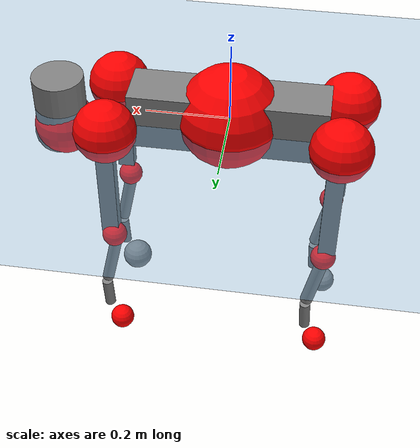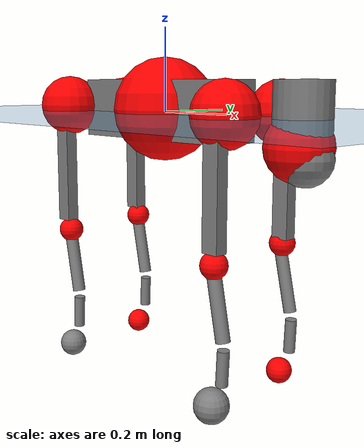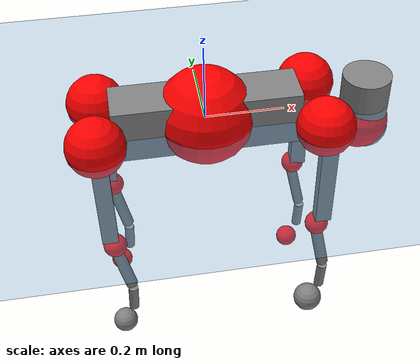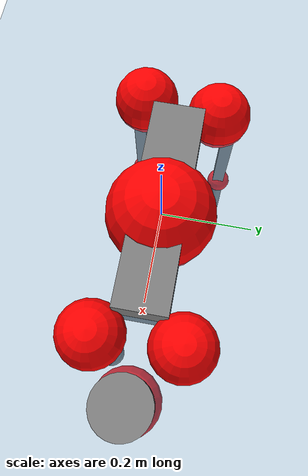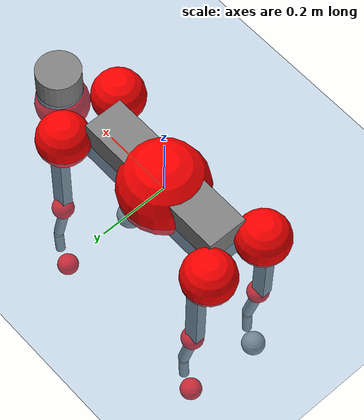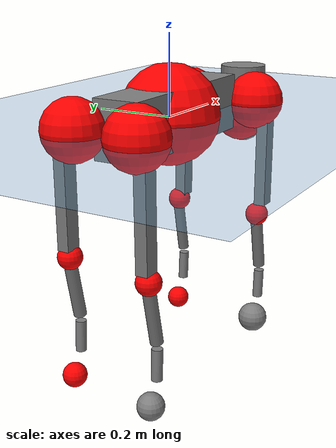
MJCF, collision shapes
<mujoco model="go2">
  <compiler angle="radian" assetdir="assets" balanceinertia="true" inertiafromgeom="false"/>

  <option timestep="0.005" density="1.2" viscosity="2e-05"/>

  <size nkey="1"/>

  <visual>
    <quality shadowsize="8192"/>
    <map shadowclip="0.5"/>
  </visual>

  <default>
    <default class="/">
      <geom contype="0" conaffinity="0" group="1" solref="-1000 -80"/>
      <site size="0.01 0.005 0.005" group="5"/>
      <general forcelimited="true" biastype="affine" gainprm="20" biasprm="0 -20 -0.5"/>
      <default class="go2">
        <joint armature="0.01" damping="0.01" frictionloss="0.2"/>
        <geom condim="1" margin="0.001"/>
        <default class="visual">
          <geom type="mesh" group="2"/>
        </default>
        <default class="collision">
          <geom group="3"/>
          <default class="foot">
            <geom size="0.022 0 0" condim="6" priority="1" friction="0.8 0.02 0.01" solimp="0.015 1 0.022"/>
          </default>
        </default>
        <default class="reward_collision_sphere">
          <geom group="5" rgba="1 0 0 1"/>
        </default>
      </default>
    </default>
  </default>

  <asset>
    <texture type="skybox" colorspace="auto" name="//unnamed_texture_0" builtin="gradient" rgb1="0.95 0.95 0.95" rgb2="0.95 0.95 0.95" width="100" height="600"/>
    <texture type="2d" colorspace="auto" name="texplane" builtin="checker" rgb1="0.345 0.575 0.748" rgb2="0.345 0.575 0.748" markrgb="1 1 1" width="512" height="512"/>
    <material name="MatPlane" class="/" texture="texplane" texuniform="true" texrepeat="2 2" specular="0.9"/>
    <material name="metal" class="/" rgba="0.9 0.95 0.95 1"/>
    <material name="black" class="/" rgba="0 0 0 1"/>
    <material name="white" class="/"/>
    <material name="gray" class="/" rgba="0.671705 0.692426 0.77427 1"/>
    <mesh name="base_0" class="/" file="base_0.obj"/>
    <mesh name="base_1" class="/" file="base_1.obj"/>
    <mesh name="base_2" class="/" file="base_2.obj"/>
    <mesh name="base_3" class="/" file="base_3.obj"/>
    <mesh name="base_4" class="/" file="base_4.obj"/>
    <mesh name="hip_0" class="/" file="hip_0.obj"/>
    <mesh name="hip_1" class="/" file="hip_1.obj"/>
    <mesh name="thigh_0" class="/" file="thigh_0.obj"/>
    <mesh name="thigh_1" class="/" file="thigh_1.obj"/>
    <mesh name="thigh_mirror_0" class="/" file="thigh_mirror_0.obj"/>
    <mesh name="thigh_mirror_1" class="/" file="thigh_mirror_1.obj"/>
    <mesh name="calf_0" class="/" file="calf_0.obj"/>
    <mesh name="calf_1" class="/" file="calf_1.obj"/>
    <mesh name="calf_mirror_0" class="/" file="calf_mirror_0.obj"/>
    <mesh name="calf_mirror_1" class="/" file="calf_mirror_1.obj"/>
    <mesh name="foot" class="/" file="foot.obj"/>
  </asset>

  <worldbody>
    <geom name="floor" class="/" size="100 100 0.125" type="plane" group="0" material="MatPlane"/>
    <light name="toplight_shadow" class="/" pos="0 0 5" dir="0.0990148 0.0990148 -0.990148" type="directional" ambient="0.04 0.04 0.04" diffuse="0.55 0.55 0.55" specular="0.12 0.12 0.12"/>
    <light name="toplight_fill" class="/" pos="0 0 5" dir="0.0990148 0.0990148 -0.990148" type="directional" castshadow="false" ambient="0.04 0.04 0.04" diffuse="0.3 0.3 0.3" specular="0.08 0.08 0.08"/>
    <body name="trunk" childclass="go2" pos="0.000799335 -0.000754185 0.00707921" quat="1 -5.73539e-05 -9.43137e-05 0.000213437">
      <inertial pos="0.0384826 0.00985868 -0.011838" quat="-0.00754914 0.721567 0.00202742 0.6923" mass="13.3615" diaginertia="0.541487 0.0293463 0.154166"/>
      <joint name="//unnamed_joint_0" type="free" armature="0" damping="0" frictionloss="0"/>
      <geom name="//unnamed_geom_1" class="visual" material="black" mesh="base_0"/>
      <geom name="//unnamed_geom_2" class="visual" material="black" mesh="base_1"/>
      <geom name="//unnamed_geom_3" class="visual" material="black" mesh="base_2"/>
      <geom name="//unnamed_geom_4" class="visual" material="white" mesh="base_3"/>
      <geom name="//unnamed_geom_5" class="visual" material="gray" mesh="base_4"/>
      <geom name="trunk_1" class="collision" size="0.233677 0.0580777 0.0708113" type="box"/>
      <geom name="trunk_2" class="collision" size="0.0621152 0.0559037" pos="0.409064 0 0.0148612" type="cylinder"/>
      <geom name="trunk_3" class="collision" size="0.0583883" pos="0.420547 0 -0.089167"/>
      <geom name="//unnamed_geom_9" class="reward_collision_sphere" size="0.12423"/>
      <geom name="//unnamed_geom_10" class="reward_collision_sphere" size="0.0745382" pos="0.401888 0 -0.0668753"/>
      <site name="imu" pos="0.0227596 -0.000354657 0.014288" size="0.012423"/>
      <camera name="track" pos="0 -1.61096 0" quat="0.707107 0.707107 0 0" mode="trackcom"/>
      <camera name="ego_camera" pos="0.447818 0 0.0668753" quat="-0.5 -0.5 0.5 0.5"/>
      <body name="FL_hip" pos="0.277592 0.0405826 -0.00233469" quat="0.999997 0.00221999 -0.000439077 0.00103323">
        <inertial pos="-0.0176989 0.00633849 -0.00167672" quat="0.509343 0.506284 0.480472 0.503381" mass="1.43986" diaginertia="0.00599138 0.000194427 0.00330659"/>
        <joint name="FL_hip_joint" pos="0 0 0" axis="0.999254 -0.0194513 -0.0333642" stiffness="0.00905083" range="-1.07387 0.939699" armature="0.00562801" damping="0.060912" frictionloss="0.25536"/>
        <geom name="//unnamed_geom_11" class="visual" material="metal" mesh="hip_0"/>
        <geom name="//unnamed_geom_12" class="visual" material="gray" mesh="hip_1"/>
        <geom name="//unnamed_geom_13" class="collision" size="0.057146 0.0248461" pos="0 0.0644385 0" quat="0.707107 0.707107 0 0" type="cylinder"/>
        <geom name="//unnamed_geom_14" class="reward_collision_sphere" size="0.0745382" pos="0 0.0563836 0"/>
        <body name="FL_thigh" pos="-0.00100854 0.0751791 -0.000186056" quat="1 -0.000484133 0.000339333 0.000611555">
          <inertial pos="-0.0090697 -0.01761 -0.0588454" quat="0.827404 0.0933414 -0.0169529 0.553537" mass="2.07075" diaginertia="0.0414873 0.00201271 0.00649926"/>
          <joint name="FL_thigh_joint" pos="0 0 0" axis="0.000199654 0.998347 0.0574662" range="-1.53979 3.4805" armature="0.0122344" damping="0.0195582" frictionloss="0.369217"/>
          <geom name="//unnamed_geom_15" class="visual" material="metal" mesh="thigh_0"/>
          <geom name="//unnamed_geom_16" class="visual" material="gray" mesh="thigh_1"/>
          <geom name="//unnamed_geom_17" class="collision" size="0.132305 0.0152182 0.0211192" pos="0 0 -0.158272" quat="0.707107 0 0.707107 0" type="box"/>
          <body name="FL_calf" pos="-0.00864043 0.00889622 -0.30466" quat="0.999991 0.00265575 -0.00212229 -0.00267082">
            <inertial pos="0.0103666 0.000630656 -0.20863" quat="0.712884 -0.00117988 0.00260597 0.701276" mass="0.484227" diaginertia="0.00961199 0.000498966 0.000415991"/>
            <joint name="FL_calf_joint" pos="0 0 0" axis="0.0560402 0.996644 -0.0596595" range="-2.58965 -0.905112" armature="0.00965637" damping="0.0523326" frictionloss="0.17035"/>
            <geom name="//unnamed_geom_18" class="visual" material="gray" mesh="calf_0"/>
            <geom name="//unnamed_geom_19" class="visual" material="black" mesh="calf_1"/>
            <geom name="FL_calf0" class="collision" size="0.0149076 0.0745382" pos="0.0114825 0 -0.089167" quat="0.994493 0 -0.104807 0" type="cylinder"/>
            <geom name="//unnamed_geom_21" class="collision" size="0.0136653 0.0403749" pos="0.0287063 0 -0.219945" quat="0.999688 0 0.0249974 0" type="cylinder"/>
            <geom name="//unnamed_geom_22" class="visual" pos="0 0 -0.316543" quat="1 0 0 0" material="black" mesh="foot"/>
            <geom name="FL_foot" class="foot" size="0.0258528" pos="-0.00287063 0 -0.316543"/>
            <geom name="//unnamed_geom_24" class="reward_collision_sphere" size="0.0310576"/>
            <geom name="//unnamed_geom_25" class="reward_collision_sphere" size="0.0310576" pos="-0.00287063 0 -0.316543"/>
            <site name="FL_foot" class="foot" pos="-0.00287063 0 -0.316543" size="0.012423"/>
          </body>
        </body>
      </body>
      <body name="FR_hip" pos="0.284028 -0.038669 -0.0012714" quat="1 -2.3788e-05 5.23078e-05 -3.43541e-05">
        <inertial pos="-0.0173272 -0.00190823 0.000731738" quat="0.497566 0.505191 0.50533 0.491784" mass="1.22254" diaginertia="0.00522012 0.000173591 0.00321914"/>
        <joint name="FR_hip_joint" pos="0 0 0" axis="0.999859 -0.0166996 0.00180498" stiffness="0.0139802" range="-0.844279 1.04283" armature="0.0180317" damping="0" frictionloss="0.37083"/>
        <geom name="//unnamed_geom_26" class="visual" pos="0 -5.92943e-09 -2.54325e-07" quat="4.63268e-05 1 0 0" material="metal" mesh="hip_0"/>
        <geom name="//unnamed_geom_27" class="visual" pos="0 -9.61231e-09 6.29044e-07" quat="4.63268e-05 1 0 0" material="gray" mesh="hip_1"/>
        <geom name="//unnamed_geom_28" class="collision" size="0.057146 0.0248461" pos="0 -0.0644385 0" quat="0.707107 0.707107 0 0" type="cylinder"/>
        <geom name="//unnamed_geom_29" class="reward_collision_sphere" size="0.0745382" pos="0 -0.0563836 0"/>
        <body name="FR_thigh" pos="0.0039773 -0.0876964 0.00475535" quat="1 -0.000399898 0.000221495 0.000482998">
          <inertial pos="-0.00587502 0.0178462 -0.0494948" quat="0.53235 0.018082 0.0710357 0.843345" mass="2.75753" diaginertia="0.0402335 0.00200631 0.00662617"/>
          <joint name="FR_thigh_joint" pos="0 0 0" axis="0.0132136 -0.999182 0.038207" stiffness="0.0227553" range="-3.72468 1.43726" armature="0.0119526" damping="0.0479347" frictionloss="0.0881404"/>
          <geom name="//unnamed_geom_30" class="visual" material="metal" mesh="thigh_mirror_0"/>
          <geom name="//unnamed_geom_31" class="visual" material="gray" mesh="thigh_mirror_1"/>
          <geom name="//unnamed_geom_32" class="collision" size="0.132305 0.0152182 0.0211192" pos="0 0 -0.158272" quat="0.707107 0 0.707107 0" type="box"/>
          <body name="FR_calf" pos="-0.00971446 0.0106172 -0.320224" quat="1 -3.11548e-05 -0.000399384 -0.000198956">
            <inertial pos="0.00766227 -0.000729653 -0.220719" quat="0.717631 0.00814083 0.0167896 0.696173" mass="0.461078" diaginertia="0.0103384 0.000546034 0.000389265"/>
            <joint name="FR_calf_joint" pos="0 0 0" axis="0.0174215 -0.999848 0.000410558" range="0.954026 2.59612" armature="0.0139305" damping="0.00884474" frictionloss="0.38845"/>
            <geom name="//unnamed_geom_33" class="visual" material="gray" mesh="calf_mirror_0"/>
            <geom name="//unnamed_geom_34" class="visual" material="black" mesh="calf_mirror_1"/>
            <geom name="FR_calf0" class="collision" size="0.01615 0.0745382" pos="0.0143531 0 -0.089167" quat="0.995004 0 -0.0998334 0" type="cylinder"/>
            <geom name="//unnamed_geom_36" class="collision" size="0.0136653 0.0403749" pos="0.0287063 0 -0.219945" quat="0.999688 0 0.0249974 0" type="cylinder"/>
            <geom name="//unnamed_geom_37" class="visual" pos="0 0 -0.316543" quat="1 0 0 0" material="black" mesh="foot"/>
            <geom name="FR_foot" class="foot" size="0.0405839" pos="-0.00287063 0 -0.316543"/>
            <geom name="//unnamed_geom_39" class="reward_collision_sphere" size="0.0310576"/>
            <geom name="//unnamed_geom_40" class="reward_collision_sphere" size="0.0310576" pos="-0.00287063 0 -0.316543"/>
            <site name="FR_foot" class="foot" pos="-0.00287063 0 -0.316543" size="0.012423"/>
          </body>
        </body>
      </body>
      <body name="RL_hip" pos="-0.265985 0.0335604 0.00147783" quat="1 0.000347724 -0.000708451 -0.000561542">
        <inertial pos="0.00354518 -0.00868021 0.00140627" quat="0.524008 0.495726 0.474122 0.504857" mass="1.30823" diaginertia="0.00621697 0.000193172 0.00435006"/>
        <joint name="RL_hip_joint" pos="0 0 0" axis="-0.999908 -0.000972617 0.013554" stiffness="0.0161779" range="-1.1108 1.30506" armature="0.0191375" damping="0.0360878" frictionloss="0.230949"/>
        <geom name="//unnamed_geom_41" class="visual" pos="4.42583e-10 0 8.67565e-08" quat="4.63268e-05 0 1 0" material="metal" mesh="hip_0"/>
        <geom name="//unnamed_geom_42" class="visual" pos="7.1748e-10 0 7.69407e-08" quat="4.63268e-05 0 1 0" material="gray" mesh="hip_1"/>
        <geom name="//unnamed_geom_43" class="collision" size="0.057146 0.0248461" pos="0 0.0644385 0" quat="0.707107 0.707107 0 0" type="cylinder"/>
        <geom name="//unnamed_geom_44" class="reward_collision_sphere" size="0.0745382" pos="0 0.0563836 0"/>
        <body name="RL_thigh" pos="0.00639095 0.0895595 0.00163451" quat="1 -1.0165e-05 -1.83107e-06 2.64527e-05">
          <inertial pos="-0.00444528 -0.02658 -0.0484189" quat="0.831222 0.0844769 -0.0235526 0.54898" mass="2.19558" diaginertia="0.0359799 0.00211415 0.00615001"/>
          <joint name="RL_thigh_joint" pos="0 0 0" axis="-0.044351 0.998985 -0.00792185" range="-0.492079 4.52383" armature="0.0154339" damping="0.0304705" frictionloss="0.212139"/>
          <geom name="//unnamed_geom_45" class="visual" material="metal" mesh="thigh_0"/>
          <geom name="//unnamed_geom_46" class="visual" material="gray" mesh="thigh_1"/>
          <geom name="//unnamed_geom_47" class="collision" size="0.132305 0.0152182 0.0211192" pos="0 0 -0.158272" quat="0.707107 0 0.707107 0" type="box"/>
          <body name="RL_calf" pos="0.00650016 0.002042 -0.313291" quat="0.999998 0.00025491 -0.000435708 0.00169496">
            <inertial pos="0.00926714 0.000271757 -0.211991" quat="0.704359 -0.0568808 -0.0290198 0.706966" mass="0.471928" diaginertia="0.00936668 0.000507001 0.000450702"/>
            <joint name="RL_calf_joint" pos="0 0 0" axis="0.00270246 0.999242 -0.0388423" range="-2.74798 -0.842319" armature="0.0170099" damping="0.00571424" frictionloss="0.166892"/>
            <geom name="//unnamed_geom_48" class="visual" material="gray" mesh="calf_0"/>
            <geom name="//unnamed_geom_49" class="visual" material="black" mesh="calf_1"/>
            <geom name="RL_calf0" class="collision" size="0.01615 0.0745382" pos="0.0143531 0 -0.089167" quat="0.995004 0 -0.0998334 0" type="cylinder"/>
            <geom name="//unnamed_geom_51" class="collision" size="0.0136653 0.0403749" pos="0.0287063 0 -0.219945" quat="0.999688 0 0.0249974 0" type="cylinder"/>
            <geom name="//unnamed_geom_52" class="visual" pos="0 0 -0.316543" quat="1 0 0 0" material="black" mesh="foot"/>
            <geom name="RL_foot" class="foot" size="0.0146404" pos="-0.00287063 0 -0.316543"/>
            <geom name="//unnamed_geom_54" class="reward_collision_sphere" size="0.0310576"/>
            <geom name="//unnamed_geom_55" class="reward_collision_sphere" size="0.0310576" pos="-0.00287063 0 -0.316543"/>
            <site name="RL_foot" class="foot" pos="-0.00287063 0 -0.316543" size="0.012423"/>
          </body>
        </body>
      </body>
      <body name="RR_hip" pos="-0.275866 -0.0271577 0.00433752" quat="0.999992 -0.00247903 -0.00237873 0.0021494">
        <inertial pos="0.0182433 -0.00320993 -0.00951672" quat="0.492142 0.501017 0.496907 0.509766" mass="1.37656" diaginertia="0.00580701 0.000214133 0.00420747"/>
        <joint name="RR_hip_joint" pos="0 0 0" axis="-0.999983 0.00246884 0.0053247" stiffness="0.0235826" range="-0.866788 0.814424" armature="0.0123293" damping="0.041839" frictionloss="0.263134"/>
        <geom name="//unnamed_geom_56" class="visual" pos="-4.64389e-10 -5.92943e-09 3.41082e-07" quat="2.14617e-09 4.63268e-05 4.63268e-05 -1" material="metal" mesh="hip_0"/>
        <geom name="//unnamed_geom_57" class="visual" pos="-6.63548e-10 -9.61231e-09 -5.52103e-07" quat="2.14617e-09 4.63268e-05 4.63268e-05 -1" material="gray" mesh="hip_1"/>
        <geom name="//unnamed_geom_58" class="collision" size="0.057146 0.0248461" pos="0 -0.0644385 0" quat="0.707107 0.707107 0 0" type="cylinder"/>
        <geom name="//unnamed_geom_59" class="reward_collision_sphere" size="0.0745382" pos="0 -0.0563836 0"/>
        <body name="RR_thigh" pos="0.00166676 -0.0723417 -0.0104601" quat="1 0.000295826 0.000201226 0.000107806">
          <inertial pos="-0.012647 0.0191034 -0.0491356" quat="0.551274 -0.0200014 0.0849115 0.829751" mass="2.91735" diaginertia="0.0467219 0.00233167 0.00726227"/>
          <joint name="RR_thigh_joint" pos="0 0 0" axis="-0.0146777 -0.999061 0.0407586" range="-4.51633 0.548186" armature="0.0146261" damping="0.018967" frictionloss="0.26565"/>
          <geom name="//unnamed_geom_60" class="visual" material="metal" mesh="thigh_mirror_0"/>
          <geom name="//unnamed_geom_61" class="visual" material="gray" mesh="thigh_mirror_1"/>
          <geom name="//unnamed_geom_62" class="collision" size="0.132305 0.0152182 0.0211192" pos="0 0 -0.158272" quat="0.707107 0 0.707107 0" type="box"/>
          <body name="RR_calf" pos="0.0101484 0.00107243 -0.316753" quat="0.999997 -0.00173299 -0.00141362 -0.000586999">
            <inertial pos="0.0124578 0.0006599 -0.209094" quat="0.733202 0.00717463 -0.00765545 0.67993" mass="0.47055" diaginertia="0.00981211 0.000446861 0.000396913"/>
            <joint name="RR_calf_joint" pos="0 0 0" axis="-0.0206585 -0.999767 -0.00627092" range="0.854772 2.77122" armature="0.0195213" damping="0.00171102" frictionloss="0.245537"/>
            <geom name="//unnamed_geom_63" class="visual" material="gray" mesh="calf_mirror_0"/>
            <geom name="//unnamed_geom_64" class="visual" material="black" mesh="calf_mirror_1"/>
            <geom name="RR_calf0" class="collision" size="0.01615 0.0745382" pos="0.0143531 0 -0.089167" quat="0.995004 0 -0.0998334 0" type="cylinder"/>
            <geom name="//unnamed_geom_66" class="collision" size="0.0136653 0.0403749" pos="0.0287063 0 -0.219945" quat="0.999688 0 0.0249974 0" type="cylinder"/>
            <geom name="//unnamed_geom_67" class="visual" pos="0 0 -0.316543" quat="1 0 0 0" material="black" mesh="foot"/>
            <geom name="RR_foot" class="foot" size="0.0340781" pos="-0.00287063 0 -0.316543"/>
            <geom name="//unnamed_geom_69" class="reward_collision_sphere" size="0.0310576"/>
            <geom name="//unnamed_geom_70" class="reward_collision_sphere" size="0.0310576" pos="-0.00287063 0 -0.316543"/>
            <site name="RR_foot" class="foot" pos="-0.00287063 0 -0.316543" size="0.012423"/>
          </body>
        </body>
      </body>
    </body>
  </worldbody>

  <contact>
    <pair class="/" geom1="floor" geom2="FL_foot" name="//unnamed_contact_0"/>
    <pair class="/" geom1="floor" geom2="FR_foot" name="//unnamed_contact_1"/>
    <pair class="/" geom1="floor" geom2="RL_foot" name="//unnamed_contact_2"/>
    <pair class="/" geom1="floor" geom2="RR_foot" name="//unnamed_contact_3"/>
  </contact>

  <actuator>
    <general name="FL_hip" class="/" joint="FL_hip_joint" forcerange="-29.7722 29.7722" gainprm="24.2831" biasprm="0 -24.2831 -0.640267"/>
    <general name="FL_thigh" class="/" joint="FL_thigh_joint" forcerange="-35.5862 35.5862" gainprm="24.2831" biasprm="0 -24.2831 -0.640267"/>
    <general name="FL_calf" class="/" joint="FL_calf_joint" forcerange="-59.7731 59.7731" gainprm="24.2831" biasprm="0 -24.2831 -0.640267"/>
    <general name="FR_hip" class="/" joint="FR_hip_joint" forcerange="-36.2184 36.2184" gainprm="24.2831" biasprm="0 -24.2831 -0.640267"/>
    <general name="FR_thigh" class="/" joint="FR_thigh_joint" forcerange="-24.7437 24.7437" gainprm="24.2831" biasprm="0 -24.2831 -0.640267"/>
    <general name="FR_calf" class="/" joint="FR_calf_joint" forcerange="-76.5451 76.5451" gainprm="24.2831" biasprm="0 -24.2831 -0.640267"/>
    <general name="RL_hip" class="/" joint="RL_hip_joint" forcerange="-29.4798 29.4798" gainprm="24.2831" biasprm="0 -24.2831 -0.640267"/>
    <general name="RL_thigh" class="/" joint="RL_thigh_joint" forcerange="-40.1942 40.1942" gainprm="24.2831" biasprm="0 -24.2831 -0.640267"/>
    <general name="RL_calf" class="/" joint="RL_calf_joint" forcerange="-59.3023 59.3023" gainprm="24.2831" biasprm="0 -24.2831 -0.640267"/>
    <general name="RR_hip" class="/" joint="RR_hip_joint" forcerange="-32.3492 32.3492" gainprm="24.2831" biasprm="0 -24.2831 -0.640267"/>
    <general name="RR_thigh" class="/" joint="RR_thigh_joint" forcerange="-41.7355 41.7355" gainprm="24.2831" biasprm="0 -24.2831 -0.640267"/>
    <general name="RR_calf" class="/" joint="RR_calf_joint" forcerange="-37.605 37.605" gainprm="24.2831" biasprm="0 -24.2831 -0.640267"/>
  </actuator>

  <sensor>
    <gyro site="imu" name="imu_angular_velocity"/>
    <velocimeter site="imu" name="imu_linear_velocity"/>
    <framelinvel objtype="site" objname="FL_foot" name="FL_foot_global_linear_velocity"/>
    <framelinvel objtype="site" objname="FR_foot" name="FR_foot_global_linear_velocity"/>
    <framelinvel objtype="site" objname="RL_foot" name="RL_foot_global_linear_velocity"/>
    <framelinvel objtype="site" objname="RR_foot" name="RR_foot_global_linear_velocity"/>
  </sensor>

  <keyframe>
    <key name="home" qpos="0 0 0.325 1 0 0 0 0.1 0.8 -1.5 -0.1 -0.8 1.5 -0.1 0.8 -1.5 0.1 -0.8 1.5"/>
  </keyframe>
</mujoco>
